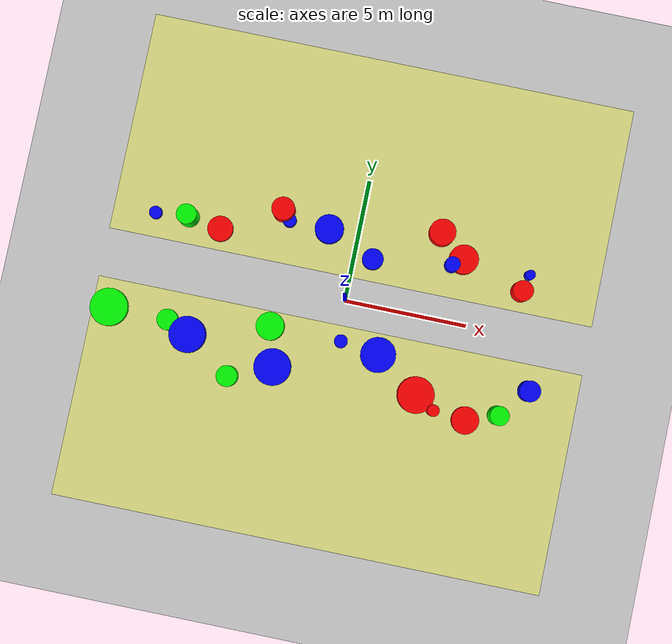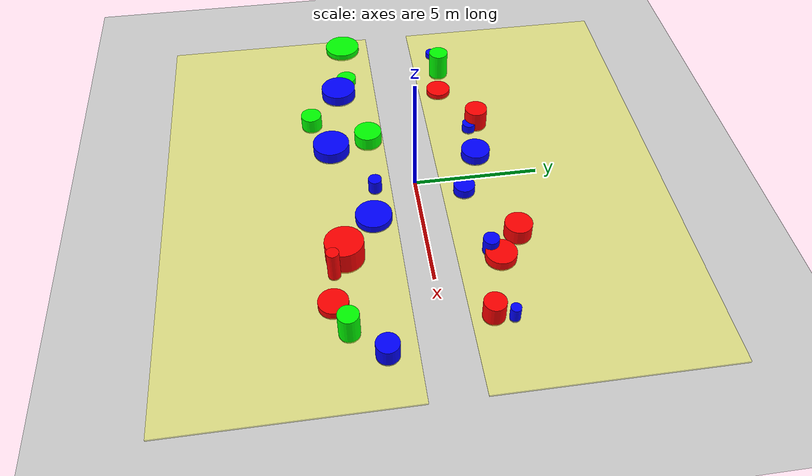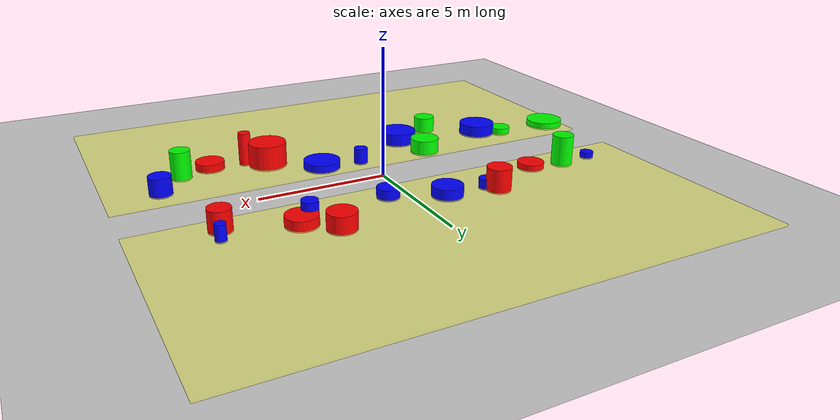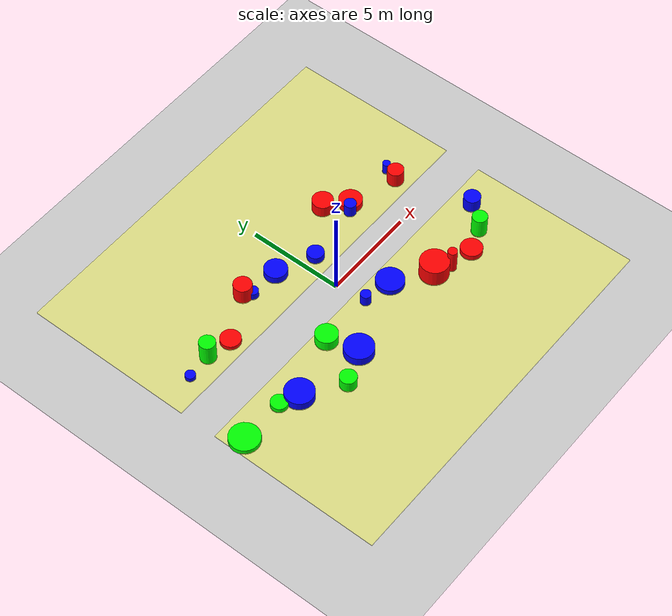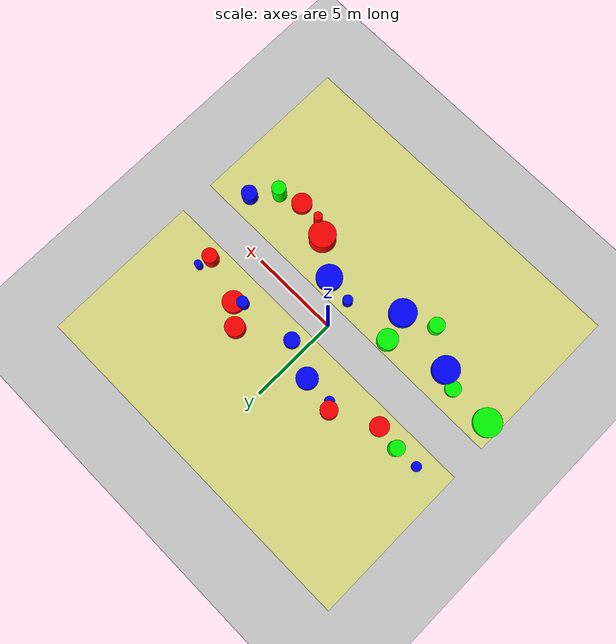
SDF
<sdf version="1.9">
 <world name="car_world">
  <physics name="1ms" type="ignored">
   <max_step_size>0.1</max_step_size>
   <real_time_factor>1</real_time_factor>
   <real_time_update_rate>1000</real_time_update_rate>
  </physics>
  <plugin filename="ignition-gazebo-sensors-system" name="ignition::gazebo::systems::Sensors">
   <render_engine>ogre2</render_engine>
  </plugin>
  <plugin name="ignition::gazebo::systems::Physics" filename="libignition-gazebo-physics-system.so"/>
  <plugin name="ignition::gazebo::systems::UserCommands" filename="libignition-gazebo-user-commands-system.so"/>
  <plugin name="ignition::gazebo::systems::SceneBroadcaster" filename="libignition-gazebo-scene-broadcaster-system.so"/>
  <gravity>0 0 -9.8</gravity>
  <magnetic_field>6e-06 2.3e-05 -4.2e-05</magnetic_field>
  <atmosphere type="adiabatic"/>
  <scene><ambient>0.4 0.4 0.4 1</ambient><background>0.7 0.7 0.7 1</background><shadows>true</shadows></scene>
  <model name="ground_plane">
   <static>true</static>
   <link name="link">
    <collision name="collision">
     <geometry><plane><normal>0 0 1</normal><size>1 1</size></plane></geometry>
    </collision>
    <visual name="visual">
     <geometry><plane><normal>0 0 1</normal><size>100 100</size></plane></geometry>
     <material>
      <ambient>0.8 0.8 0.8 1</ambient>
      <diffuse>0.8 0.8 0.8 1</diffuse>
      <specular>0.8 0.8 0.8 1</specular>
     </material>
    </visual>
    <inertial>
     <mass>1</mass>
     <inertia><ixx>1</ixx><ixy>0</ixy><ixz>0</ixz><iyy>1</iyy><iyz>0</iyz><izz>1</izz></inertia>
    </inertial>
   </link>
  </model>
  <light name="sun" type="directional">
   <pose>0 0 10 0 -0 0</pose>
   <intensity>1</intensity>
   <direction>-0.5 0.1 -0.9</direction>
   <diffuse>0.8 0.8 0.8 1</diffuse>
   <specular>0.2 0.2 0.2 1</specular>
   <attenuation>
    <range>1000</range>
    <linear>0.01</linear>
    <constant>0.90000000000000002</constant>
    <quadratic>0.001</quadratic>
   </attenuation>
   <spot><inner_angle>0</inner_angle><outer_angle>0</outer_angle><falloff>0</falloff></spot>
  </light>
  <model name="plank_left">
   <pose>0 5.5 0 0 0 0</pose>
   <link name="link_1">
    <inertial>
     <mass>54.0001</mass>
     <inertia><ixx>364.546</ixx><ixy>0</ixy><ixz>0</ixz><iyy>1800.06</iyy><iyz>0</iyz><izz>2164.51</izz></inertia>
    </inertial>
    <visual name="visual">
     <geometry><box><size>20 9 0.1</size></box></geometry>
     <material>
      <ambient>1 1 0.3 0.5</ambient>
      <diffuse>1 1 0.3 0.5</diffuse>
      <specular>1 1 0.3 0.5</specular>
     </material>
    </visual>
    <collision name="collision">
     <geometry><box><size>20 9 0.1</size></box></geometry>
     <surface><friction><ode><mu>1</mu><mu2>1</mu2></ode></friction></surface>
    </collision>
   </link>
   <static>0</static>
  </model>
  <model name="plank_right">
   <pose>0 -5.5 0 0 0 0</pose>
   <link name="link_1">
    <inertial>
     <mass>54.0001</mass>
     <inertia><ixx>364.546</ixx><ixy>0</ixy><ixz>0</ixz><iyy>1800.06</iyy><iyz>0</iyz><izz>2164.51</izz></inertia>
    </inertial>
    <visual name="visual">
     <geometry><box><size>20 9 0.1</size></box></geometry>
     <material>
      <ambient>1 1 0.3 0.5</ambient>
      <diffuse>1 1 0.3 0.5</diffuse>
      <specular>1 1 0.3 0.5</specular>
     </material>
    </visual>
    <collision name="collision">
     <geometry><box><size>20 9 0.1</size></box></geometry>
     <surface><friction><ode><mu>1</mu><mu2>1</mu2></ode></friction></surface>
    </collision>
   </link>
   <static>0</static>
  </model>
  <model name="cyl_0">
   <pose>-9.3 -2.17 0.14 0 -0 0</pose>
   <link name="cylinder_link">
    <inertial>
     <inertia>
      <ixx>0.14580000000000001</ixx>
      <ixy>0</ixy>
      <ixz>0</ixz>
      <iyy>0.14580000000000001</iyy>
      <iyz>0</iyz>
      <izz>0.125</izz>
     </inertia>
     <mass>1</mass>
    </inertial>
    <collision name="cylinder_collision">
     <geometry><cylinder><radius>0.77</radius><length>0.29</length></cylinder></geometry>
    </collision>
    <visual name="cylinder_visual">
     <geometry><cylinder><radius>0.77</radius><length>0.29</length></cylinder></geometry>
     <material><ambient>0 1 0 1</ambient><diffuse>0 1 0 1</diffuse><specular>0 1 0 1</specular></material>
    </visual>
   </link>
   <static>false</static>
  </model>
  <model name="cyl_1">
   <pose>-8.26 1.97 0.13 0 -0 0</pose>
   <link name="cylinder_link">
    <inertial>
     <inertia>
      <ixx>0.14580000000000001</ixx>
      <ixy>0</ixy>
      <ixz>0</ixz>
      <iyy>0.14580000000000001</iyy>
      <iyz>0</iyz>
      <izz>0.125</izz>
     </inertia>
     <mass>1</mass>
    </inertial>
    <collision name="cylinder_collision">
     <geometry><cylinder><radius>0.26</radius><length>0.26</length></cylinder></geometry>
    </collision>
    <visual name="cylinder_visual">
     <geometry><cylinder><radius>0.26</radius><length>0.26</length></cylinder></geometry>
     <material><ambient>0 0 1 1</ambient><diffuse>0 0 1 1</diffuse><specular>0 0 1 1</specular></material>
    </visual>
   </link>
   <static>false</static>
  </model>
  <model name="cyl_2">
   <pose>-6.88 -2.19 0.14 0 -0 0</pose>
   <link name="cylinder_link">
    <inertial>
     <inertia>
      <ixx>0.14580000000000001</ixx>
      <ixy>0</ixy>
      <ixz>0</ixz>
      <iyy>0.14580000000000001</iyy>
      <iyz>0</iyz>
      <izz>0.125</izz>
     </inertia>
     <mass>1</mass>
    </inertial>
    <collision name="cylinder_collision">
     <geometry><cylinder><radius>0.43</radius><length>0.29</length></cylinder></geometry>
    </collision>
    <visual name="cylinder_visual">
     <geometry><cylinder><radius>0.43</radius><length>0.29</length></cylinder></geometry>
     <material><ambient>0 1 0 1</ambient><diffuse>0 1 0 1</diffuse><specular>0 1 0 1</specular></material>
    </visual>
   </link>
   <static>false</static>
  </model>
  <model name="cyl_3">
   <pose>-6.89 2.07 0.61 0 -0 0</pose>
   <link name="cylinder_link">
    <inertial>
     <inertia>
      <ixx>0.14580000000000001</ixx>
      <ixy>0</ixy>
      <ixz>0</ixz>
      <iyy>0.14580000000000001</iyy>
      <iyz>0</iyz>
      <izz>0.125</izz>
     </inertia>
     <mass>1</mass>
    </inertial>
    <collision name="cylinder_collision">
     <geometry><cylinder><radius>0.41</radius><length>1.23</length></cylinder></geometry>
    </collision>
    <visual name="cylinder_visual">
     <geometry><cylinder><radius>0.41</radius><length>1.23</length></cylinder></geometry>
     <material><ambient>0 1 0 1</ambient><diffuse>0 1 0 1</diffuse><specular>0 1 0 1</specular></material>
    </visual>
   </link>
   <static>false</static>
  </model>
  <model name="cyl_4">
   <pose>-5.95 -2.62 0.24 0 -0 0</pose>
   <link name="cylinder_link">
    <inertial>
     <inertia>
      <ixx>0.14580000000000001</ixx>
      <ixy>0</ixy>
      <ixz>0</ixz>
      <iyy>0.14580000000000001</iyy>
      <iyz>0</iyz>
      <izz>0.125</izz>
     </inertia>
     <mass>1</mass>
    </inertial>
    <collision name="cylinder_collision">
     <geometry><cylinder><radius>0.74</radius><length>0.49</length></cylinder></geometry>
    </collision>
    <visual name="cylinder_visual">
     <geometry><cylinder><radius>0.74</radius><length>0.49</length></cylinder></geometry>
     <material><ambient>0 0 1 1</ambient><diffuse>0 0 1 1</diffuse><specular>0 0 1 1</specular></material>
    </visual>
   </link>
   <static>false</static>
  </model>
  <model name="cyl_5">
   <pose>-5.55 1.85 0.13 0 -0 0</pose>
   <link name="cylinder_link">
    <inertial>
     <inertia>
      <ixx>0.14580000000000001</ixx>
      <ixy>0</ixy>
      <ixz>0</ixz>
      <iyy>0.14580000000000001</iyy>
      <iyz>0</iyz>
      <izz>0.125</izz>
     </inertia>
     <mass>1</mass>
    </inertial>
    <collision name="cylinder_collision">
     <geometry><cylinder><radius>0.52</radius><length>0.26</length></cylinder></geometry>
    </collision>
    <visual name="cylinder_visual">
     <geometry><cylinder><radius>0.52</radius><length>0.26</length></cylinder></geometry>
     <material><ambient>1 0 0 1</ambient><diffuse>1 0 0 1</diffuse><specular>1 0 0 1</specular></material>
    </visual>
   </link>
   <static>false</static>
  </model>
  <model name="cyl_6">
   <pose>-4.03 -3.93 0.33 0 -0 0</pose>
   <link name="cylinder_link">
    <inertial>
     <inertia>
      <ixx>0.14580000000000001</ixx>
      <ixy>0</ixy>
      <ixz>0</ixz>
      <iyy>0.14580000000000001</iyy>
      <iyz>0</iyz>
      <izz>0.125</izz>
     </inertia>
     <mass>1</mass>
    </inertial>
    <collision name="cylinder_collision">
     <geometry><cylinder><radius>0.43</radius><length>0.66</length></cylinder></geometry>
    </collision>
    <visual name="cylinder_visual">
     <geometry><cylinder><radius>0.43</radius><length>0.66</length></cylinder></geometry>
     <material><ambient>0 1 0 1</ambient><diffuse>0 1 0 1</diffuse><specular>0 1 0 1</specular></material>
    </visual>
   </link>
   <static>false</static>
  </model>
  <model name="cyl_7">
   <pose>-3.17 3.1 0.46 0 -0 0</pose>
   <link name="cylinder_link">
    <inertial>
     <inertia>
      <ixx>0.14580000000000001</ixx>
      <ixy>0</ixy>
      <ixz>0</ixz>
      <iyy>0.14580000000000001</iyy>
      <iyz>0</iyz>
      <izz>0.125</izz>
     </inertia>
     <mass>1</mass>
    </inertial>
    <collision name="cylinder_collision">
     <geometry><cylinder><radius>0.47</radius><length>0.92</length></cylinder></geometry>
    </collision>
    <visual name="cylinder_visual">
     <geometry><cylinder><radius>0.47</radius><length>0.92</length></cylinder></geometry>
     <material><ambient>1 0 0 1</ambient><diffuse>1 0 0 1</diffuse><specular>1 0 0 1</specular></material>
    </visual>
   </link>
   <static>false</static>
  </model>
  <model name="cyl_8">
   <pose>-2.74 -1.62 0.3 0 -0 0</pose>
   <link name="cylinder_link">
    <inertial>
     <inertia>
      <ixx>0.14580000000000001</ixx>
      <ixy>0</ixy>
      <ixz>0</ixz>
      <iyy>0.14580000000000001</iyy>
      <iyz>0</iyz>
      <izz>0.125</izz>
     </inertia>
     <mass>1</mass>
    </inertial>
    <collision name="cylinder_collision">
     <geometry><cylinder><radius>0.57</radius><length>0.61</length></cylinder></geometry>
    </collision>
    <visual name="cylinder_visual">
     <geometry><cylinder><radius>0.57</radius><length>0.61</length></cylinder></geometry>
     <material><ambient>0 1 0 1</ambient><diffuse>0 1 0 1</diffuse><specular>0 1 0 1</specular></material>
    </visual>
   </link>
   <static>false</static>
  </model>
  <model name="cyl_9">
   <pose>-2.86 2.75 0.2 0 -0 0</pose>
   <link name="cylinder_link">
    <inertial>
     <inertia>
      <ixx>0.14580000000000001</ixx>
      <ixy>0</ixy>
      <ixz>0</ixz>
      <iyy>0.14580000000000001</iyy>
      <iyz>0</iyz>
      <izz>0.125</izz>
     </inertia>
     <mass>1</mass>
    </inertial>
    <collision name="cylinder_collision">
     <geometry><cylinder><radius>0.28</radius><length>0.41</length></cylinder></geometry>
    </collision>
    <visual name="cylinder_visual">
     <geometry><cylinder><radius>0.28</radius><length>0.41</length></cylinder></geometry>
     <material><ambient>0 0 1 1</ambient><diffuse>0 0 1 1</diffuse><specular>0 0 1 1</specular></material>
    </visual>
   </link>
   <static>false</static>
  </model>
  <model name="cyl_10">
   <pose>-2.32 -3.21 0.26 0 -0 0</pose>
   <link name="cylinder_link">
    <inertial>
     <inertia>
      <ixx>0.14580000000000001</ixx>
      <ixy>0</ixy>
      <ixz>0</ixz>
      <iyy>0.14580000000000001</iyy>
      <iyz>0</iyz>
      <izz>0.125</izz>
     </inertia>
     <mass>1</mass>
    </inertial>
    <collision name="cylinder_collision">
     <geometry><cylinder><radius>0.75</radius><length>0.52</length></cylinder></geometry>
    </collision>
    <visual name="cylinder_visual">
     <geometry><cylinder><radius>0.75</radius><length>0.52</length></cylinder></geometry>
     <material><ambient>0 0 1 1</ambient><diffuse>0 0 1 1</diffuse><specular>0 0 1 1</specular></material>
    </visual>
   </link>
   <static>false</static>
  </model>
  <model name="cyl_11">
   <pose>-1.21 2.72 0.22 0 -0 0</pose>
   <link name="cylinder_link">
    <inertial>
     <inertia>
      <ixx>0.14580000000000001</ixx>
      <ixy>0</ixy>
      <ixz>0</ixz>
      <iyy>0.14580000000000001</iyy>
      <iyz>0</iyz>
      <izz>0.125</izz>
     </inertia>
     <mass>1</mass>
    </inertial>
    <collision name="cylinder_collision">
     <geometry><cylinder><radius>0.59</radius><length>0.44</length></cylinder></geometry>
    </collision>
    <visual name="cylinder_visual">
     <geometry><cylinder><radius>0.59</radius><length>0.44</length></cylinder></geometry>
     <material><ambient>0 0 1 1</ambient><diffuse>0 0 1 1</diffuse><specular>0 0 1 1</specular></material>
    </visual>
   </link>
   <static>false</static>
  </model>
  <model name="cyl_12">
   <pose>0.17 -1.64 0.32 0 -0 0</pose>
   <link name="cylinder_link">
    <inertial>
     <inertia>
      <ixx>0.14580000000000001</ixx>
      <ixy>0</ixy>
      <ixz>0</ixz>
      <iyy>0.14580000000000001</iyy>
      <iyz>0</iyz>
      <izz>0.125</izz>
     </inertia>
     <mass>1</mass>
    </inertial>
    <collision name="cylinder_collision">
     <geometry><cylinder><radius>0.27</radius><length>0.63</length></cylinder></geometry>
    </collision>
    <visual name="cylinder_visual">
     <geometry><cylinder><radius>0.27</radius><length>0.63</length></cylinder></geometry>
     <material><ambient>0 0 1 1</ambient><diffuse>0 0 1 1</diffuse><specular>0 0 1 1</specular></material>
    </visual>
   </link>
   <static>false</static>
  </model>
  <model name="cyl_13">
   <pose>0.76 1.88 0.21 0 -0 0</pose>
   <link name="cylinder_link">
    <inertial>
     <inertia>
      <ixx>0.14580000000000001</ixx>
      <ixy>0</ixy>
      <ixz>0</ixz>
      <iyy>0.14580000000000001</iyy>
      <iyz>0</iyz>
      <izz>0.125</izz>
     </inertia>
     <mass>1</mass>
    </inertial>
    <collision name="cylinder_collision">
     <geometry><cylinder><radius>0.43</radius><length>0.42</length></cylinder></geometry>
    </collision>
    <visual name="cylinder_visual">
     <geometry><cylinder><radius>0.43</radius><length>0.42</length></cylinder></geometry>
     <material><ambient>0 0 1 1</ambient><diffuse>0 0 1 1</diffuse><specular>0 0 1 1</specular></material>
    </visual>
   </link>
   <static>false</static>
  </model>
  <model name="cyl_14">
   <pose>1.75 -1.87 0.17 0 -0 0</pose>
   <link name="cylinder_link">
    <inertial>
     <inertia>
      <ixx>0.14580000000000001</ixx>
      <ixy>0</ixy>
      <ixz>0</ixz>
      <iyy>0.14580000000000001</iyy>
      <iyz>0</iyz>
      <izz>0.125</izz>
     </inertia>
     <mass>1</mass>
    </inertial>
    <collision name="cylinder_collision">
     <geometry><cylinder><radius>0.72</radius><length>0.33</length></cylinder></geometry>
    </collision>
    <visual name="cylinder_visual">
     <geometry><cylinder><radius>0.72</radius><length>0.33</length></cylinder></geometry>
     <material><ambient>0 0 1 1</ambient><diffuse>0 0 1 1</diffuse><specular>0 0 1 1</specular></material>
    </visual>
   </link>
   <static>false</static>
  </model>
  <model name="cyl_15">
   <pose>3.3 3.49 0.34 0 -0 0</pose>
   <link name="cylinder_link">
    <inertial>
     <inertia>
      <ixx>0.14580000000000001</ixx>
      <ixy>0</ixy>
      <ixz>0</ixz>
      <iyy>0.14580000000000001</iyy>
      <iyz>0</iyz>
      <izz>0.125</izz>
     </inertia>
     <mass>1</mass>
    </inertial>
    <collision name="cylinder_collision">
     <geometry><cylinder><radius>0.54</radius><length>0.67</length></cylinder></geometry>
    </collision>
    <visual name="cylinder_visual">
     <geometry><cylinder><radius>0.54</radius><length>0.67</length></cylinder></geometry>
     <material><ambient>1 0 0 1</ambient><diffuse>1 0 0 1</diffuse><specular>1 0 0 1</specular></material>
    </visual>
   </link>
   <static>false</static>
  </model>
  <model name="cyl_16">
   <pose>3.53 -3.14 0.48 0 -0 0</pose>
   <link name="cylinder_link">
    <inertial>
     <inertia>
      <ixx>0.14580000000000001</ixx>
      <ixy>0</ixy>
      <ixz>0</ixz>
      <iyy>0.14580000000000001</iyy>
      <iyz>0</iyz>
      <izz>0.125</izz>
     </inertia>
     <mass>1</mass>
    </inertial>
    <collision name="cylinder_collision">
     <geometry><cylinder><radius>0.74</radius><length>0.97</length></cylinder></geometry>
    </collision>
    <visual name="cylinder_visual">
     <geometry><cylinder><radius>0.74</radius><length>0.97</length></cylinder></geometry>
     <material><ambient>1 0 0 1</ambient><diffuse>1 0 0 1</diffuse><specular>1 0 0 1</specular></material>
    </visual>
   </link>
   <static>false</static>
  </model>
  <model name="cyl_17">
   <pose>3.95 2.3 0.36 0 -0 0</pose>
   <link name="cylinder_link">
    <inertial>
     <inertia>
      <ixx>0.14580000000000001</ixx>
      <ixy>0</ixy>
      <ixz>0</ixz>
      <iyy>0.14580000000000001</iyy>
      <iyz>0</iyz>
      <izz>0.125</izz>
     </inertia>
     <mass>1</mass>
    </inertial>
    <collision name="cylinder_collision">
     <geometry><cylinder><radius>0.31</radius><length>0.72</length></cylinder></geometry>
    </collision>
    <visual name="cylinder_visual">
     <geometry><cylinder><radius>0.31</radius><length>0.72</length></cylinder></geometry>
     <material><ambient>0 0 1 1</ambient><diffuse>0 0 1 1</diffuse><specular>0 0 1 1</specular></material>
    </visual>
   </link>
   <static>false</static>
  </model>
  <model name="cyl_18">
   <pose>4.31 -3.6 0.66 0 -0 0</pose>
   <link name="cylinder_link">
    <inertial>
     <inertia>
      <ixx>0.14580000000000001</ixx>
      <ixy>0</ixy>
      <ixz>0</ixz>
      <iyy>0.14580000000000001</iyy>
      <iyz>0</iyz>
      <izz>0.125</izz>
     </inertia>
     <mass>1</mass>
    </inertial>
    <collision name="cylinder_collision">
     <geometry><cylinder><radius>0.24</radius><length>1.32</length></cylinder></geometry>
    </collision>
    <visual name="cylinder_visual">
     <geometry><cylinder><radius>0.24</radius><length>1.32</length></cylinder></geometry>
     <material><ambient>1 0 0 1</ambient><diffuse>1 0 0 1</diffuse><specular>1 0 0 1</specular></material>
    </visual>
   </link>
   <static>false</static>
  </model>
  <model name="cyl_19">
   <pose>4.37 2.61 0.2 0 -0 0</pose>
   <link name="cylinder_link">
    <inertial>
     <inertia>
      <ixx>0.14580000000000001</ixx>
      <ixy>0</ixy>
      <ixz>0</ixz>
      <iyy>0.14580000000000001</iyy>
      <iyz>0</iyz>
      <izz>0.125</izz>
     </inertia>
     <mass>1</mass>
    </inertial>
    <collision name="cylinder_collision">
     <geometry><cylinder><radius>0.6</radius><length>0.4</length></cylinder></geometry>
    </collision>
    <visual name="cylinder_visual">
     <geometry><cylinder><radius>0.6</radius><length>0.4</length></cylinder></geometry>
     <material><ambient>1 0 0 1</ambient><diffuse>1 0 0 1</diffuse><specular>1 0 0 1</specular></material>
    </visual>
   </link>
   <static>false</static>
  </model>
  <model name="cyl_20">
   <pose>5.7 -3.74 0.17 0 -0 0</pose>
   <link name="cylinder_link">
    <inertial>
     <inertia>
      <ixx>0.14580000000000001</ixx>
      <ixy>0</ixy>
      <ixz>0</ixz>
      <iyy>0.14580000000000001</iyy>
      <iyz>0</iyz>
      <izz>0.125</izz>
     </inertia>
     <mass>1</mass>
    </inertial>
    <collision name="cylinder_collision">
     <geometry><cylinder><radius>0.56</radius><length>0.33</length></cylinder></geometry>
    </collision>
    <visual name="cylinder_visual">
     <geometry><cylinder><radius>0.56</radius><length>0.33</length></cylinder></geometry>
     <material><ambient>1 0 0 1</ambient><diffuse>1 0 0 1</diffuse><specular>1 0 0 1</specular></material>
    </visual>
   </link>
   <static>false</static>
  </model>
  <model name="cyl_21">
   <pose>6.91 1.81 0.43 0 -0 0</pose>
   <link name="cylinder_link">
    <inertial>
     <inertia>
      <ixx>0.14580000000000001</ixx>
      <ixy>0</ixy>
      <ixz>0</ixz>
      <iyy>0.14580000000000001</iyy>
      <iyz>0</iyz>
      <izz>0.125</izz>
     </inertia>
     <mass>1</mass>
    </inertial>
    <collision name="cylinder_collision">
     <geometry><cylinder><radius>0.42</radius><length>0.86</length></cylinder></geometry>
    </collision>
    <visual name="cylinder_visual">
     <geometry><cylinder><radius>0.42</radius><length>0.86</length></cylinder></geometry>
     <material><ambient>1 0 0 1</ambient><diffuse>1 0 0 1</diffuse><specular>1 0 0 1</specular></material>
    </visual>
   </link>
   <static>false</static>
  </model>
  <model name="cyl_22">
   <pose>6.93 -3.28 0.57 0 -0 0</pose>
   <link name="cylinder_link">
    <inertial>
     <inertia>
      <ixx>0.14580000000000001</ixx>
      <ixy>0</ixy>
      <ixz>0</ixz>
      <iyy>0.14580000000000001</iyy>
      <iyz>0</iyz>
      <izz>0.125</izz>
     </inertia>
     <mass>1</mass>
    </inertial>
    <collision name="cylinder_collision">
     <geometry><cylinder><radius>0.39</radius><length>1.15</length></cylinder></geometry>
    </collision>
    <visual name="cylinder_visual">
     <geometry><cylinder><radius>0.39</radius><length>1.15</length></cylinder></geometry>
     <material><ambient>0 1 0 1</ambient><diffuse>0 1 0 1</diffuse><specular>0 1 0 1</specular></material>
    </visual>
   </link>
   <static>false</static>
  </model>
  <model name="cyl_23">
   <pose>7.1 2.52 0.32 0 -0 0</pose>
   <link name="cylinder_link">
    <inertial>
     <inertia>
      <ixx>0.14580000000000001</ixx>
      <ixy>0</ixy>
      <ixz>0</ixz>
      <iyy>0.14580000000000001</iyy>
      <iyz>0</iyz>
      <izz>0.125</izz>
     </inertia>
     <mass>1</mass>
    </inertial>
    <collision name="cylinder_collision">
     <geometry><cylinder><radius>0.2</radius><length>0.64</length></cylinder></geometry>
    </collision>
    <visual name="cylinder_visual">
     <geometry><cylinder><radius>0.2</radius><length>0.64</length></cylinder></geometry>
     <material><ambient>0 0 1 1</ambient><diffuse>0 0 1 1</diffuse><specular>0 0 1 1</specular></material>
    </visual>
   </link>
   <static>false</static>
  </model>
  <model name="cyl_24">
   <pose>7.98 -2.07 0.37 0 -0 0</pose>
   <link name="cylinder_link">
    <inertial>
     <inertia>
      <ixx>0.14580000000000001</ixx>
      <ixy>0</ixy>
      <ixz>0</ixz>
      <iyy>0.14580000000000001</iyy>
      <iyz>0</iyz>
      <izz>0.125</izz>
     </inertia>
     <mass>1</mass>
    </inertial>
    <collision name="cylinder_collision">
     <geometry><cylinder><radius>0.43</radius><length>0.74</length></cylinder></geometry>
    </collision>
    <visual name="cylinder_visual">
     <geometry><cylinder><radius>0.43</radius><length>0.74</length></cylinder></geometry>
     <material><ambient>0 0 1 1</ambient><diffuse>0 0 1 1</diffuse><specular>0 0 1 1</specular></material>
    </visual>
   </link>
   <static>false</static>
  </model>
  <model name="smoker_1">
   <pose>-5.35 3.88 0 0 -0 0</pose>
   <static>true</static>
   <link name="fog_link">
    <particle_emitter name="emitter" type="box">
     <emitting>true</emitting>
     <size>10 10 0.5</size>
     <particle_size>1 1 1</particle_size>
     <lifetime>15</lifetime>
     <min_velocity>0.1</min_velocity>
     <max_velocity>0.2</max_velocity>
     <scale_rate>0.5</scale_rate>
     <rate>5</rate>
     <material>
      <diffuse>0.7 0.7 0.7</diffuse>
      <specular>1.0 1.0 1.0</specular>
      <pbr><metal><albedo_map>fog.png</albedo_map></metal></pbr>
     </material>
     <color_range_image>fogcolors.png</color_range_image>
    </particle_emitter>
   </link>
  </model>
  <model name="smoker_2">
   <pose>2.91 -3.68 0 0 -0 0</pose>
   <static>true</static>
   <link name="fog_link">
    <particle_emitter name="emitter" type="box">
     <emitting>true</emitting>
     <size>10 10 0.5</size>
     <particle_size>1 1 1</particle_size>
     <lifetime>15</lifetime>
     <min_velocity>0.1</min_velocity>
     <max_velocity>0.2</max_velocity>
     <scale_rate>0.5</scale_rate>
     <rate>5</rate>
     <material>
      <diffuse>0.7 0.7 0.7</diffuse>
      <specular>1.0 1.0 1.0</specular>
      <pbr><metal><albedo_map>fog.png</albedo_map></metal></pbr>
     </material>
     <color_range_image>fogcolors.png</color_range_image>
    </particle_emitter>
   </link>
  </model>
 </world>
</sdf>
